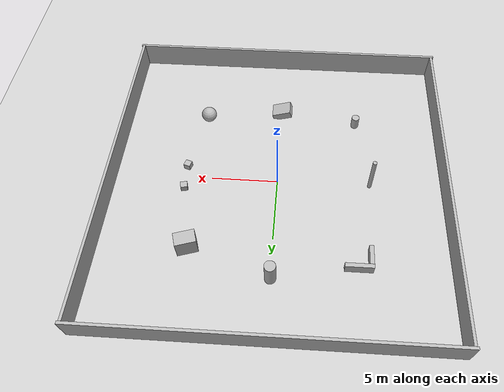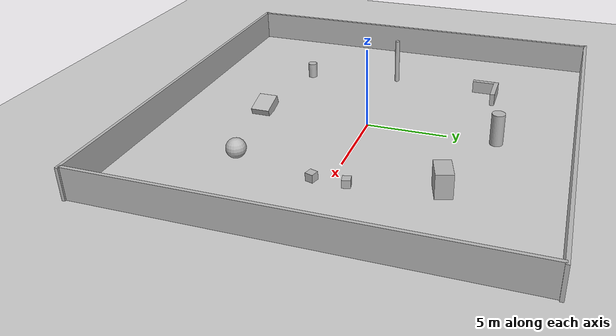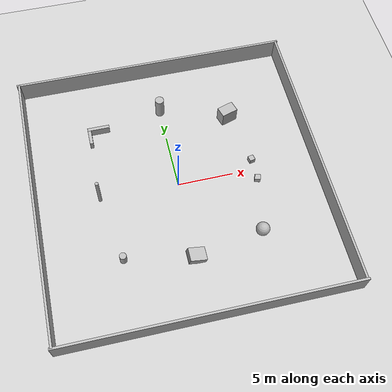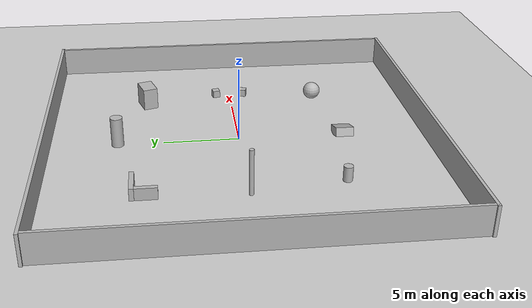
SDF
<?xml version="1.0" ?>
<sdf version='1.6'>
  <world name='gravel_large_loop'>

    <!-- Gazebo State Publisher Plugin -->
    <plugin name="gazebo_ros_state" filename="libgazebo_ros_state.so">
      <ros>
        <namespace></namespace>
        <remapping>model_states:=gazebo/model_states</remapping>
        <remapping>link_states:=gazebo/link_states</remapping>
      </ros>
      <update_rate>50.0</update_rate>
    </plugin>

    <include>
      <uri>model://sun</uri>
    </include>

    <include>
      <uri>model://ground_plane</uri>
    </include>

    <!-- Spherical coordinates — same as gravel_experiment.world -->
    <spherical_coordinates>
      <surface_model>EARTH_WGS84</surface_model>
      <latitude_deg>37.4275</latitude_deg>
      <longitude_deg>-122.1697</longitude_deg>
      <elevation>0.0</elevation>
      <heading_deg>0.0</heading_deg>
    </spherical_coordinates>

    <!-- 25 × 25 m walled arena (unchanged) -->

    <!-- North Wall -->
    <model name="wall_north">
      <static>true</static>
      <pose>0 12.5 1 0 0 0</pose>
      <link name="link">
        <collision name="collision">
          <geometry><box><size>25.4 0.2 2</size></box></geometry>
        </collision>
        <visual name="visual">
          <geometry><box><size>25.4 0.2 2</size></box></geometry>
        </visual>
      </link>
    </model>

    <!-- South Wall -->
    <model name="wall_south">
      <static>true</static>
      <pose>0 -12.5 1 0 0 0</pose>
      <link name="link">
        <collision name="collision">
          <geometry><box><size>25.4 0.2 2</size></box></geometry>
        </collision>
        <visual name="visual">
          <geometry><box><size>25.4 0.2 2</size></box></geometry>
        </visual>
      </link>
    </model>

    <!-- East Wall -->
    <model name="wall_east">
      <static>true</static>
      <pose>12.5 0 1 0 0 0</pose>
      <link name="link">
        <collision name="collision">
          <geometry><box><size>0.2 25.0 2</size></box></geometry>
        </collision>
        <visual name="visual">
          <geometry><box><size>0.2 25.0 2</size></box></geometry>
        </visual>
      </link>
    </model>

    <!-- West Wall -->
    <model name="wall_west">
      <static>true</static>
      <pose>-12.5 0 1 0 0 0</pose>
      <link name="link">
        <collision name="collision">
          <geometry><box><size>0.2 25.0 2</size></box></geometry>
        </collision>
        <visual name="visual">
          <geometry><box><size>0.2 25.0 2</size></box></geometry>
        </visual>
      </link>
    </model>

    <!-- Large box — northeast, ~8.5 m from origin -->
    <model name="large_box">
      <static>true</static>
      <pose>6 6 0.75 0 0 0.3</pose>
      <link name="link">
        <collision name="collision">
          <geometry><box><size>1.5 1 1.5</size></box></geometry>
        </collision>
        <visual name="visual">
          <geometry><box><size>1.5 1 1.5</size></box></geometry>
        </visual>
      </link>
    </model>

    <!-- Tall pillar — north, ~8 m from origin -->
    <model name="tall_pillar">
      <static>true</static>
      <pose>0 8 1 0 0 0</pose>
      <link name="link">
        <collision name="collision">
          <geometry>
            <cylinder><radius>0.4</radius><length>2.0</length></cylinder>
          </geometry>
        </collision>
        <visual name="visual">
          <geometry>
            <cylinder><radius>0.4</radius><length>2.0</length></cylinder>
          </geometry>
        </visual>
      </link>
    </model>

    <!-- Large sphere — southeast, ~8.5 m from origin -->
    <model name="large_sphere">
      <static>true</static>
      <pose>6 -6 0.6 0 0 0</pose>
      <link name="link">
        <collision name="collision">
          <geometry><sphere><radius>0.6</radius></sphere></geometry>
        </collision>
        <visual name="visual">
          <geometry><sphere><radius>0.6</radius></sphere></geometry>
        </visual>
      </link>
    </model>

    <!-- Thin column — west, ~7 m from origin -->
    <model name="thin_column">
      <static>true</static>
      <pose>-7 0 1.5 0 0 0</pose>
      <link name="link">
        <collision name="collision">
          <geometry>
            <cylinder><radius>0.15</radius><length>3.0</length></cylinder>
          </geometry>
        </collision>
        <visual name="visual">
          <geometry>
            <cylinder><radius>0.15</radius><length>3.0</length></cylinder>
          </geometry>
        </visual>
      </link>
    </model>

    <!-- Small box cluster — east, ~7 m from origin -->
    <model name="small_box_1">
      <static>true</static>
      <pose>7 1 0.25 0 0 0.2</pose>
      <link name="link">
        <collision name="collision">
          <geometry><box><size>0.5 0.5 0.5</size></box></geometry>
        </collision>
        <visual name="visual">
          <geometry><box><size>0.5 0.5 0.5</size></box></geometry>
        </visual>
      </link>
    </model>

    <model name="small_box_2">
      <static>true</static>
      <pose>7 -1 0.25 0 0 -0.3</pose>
      <link name="link">
        <collision name="collision">
          <geometry><box><size>0.5 0.5 0.5</size></box></geometry>
        </collision>
        <visual name="visual">
          <geometry><box><size>0.5 0.5 0.5</size></box></geometry>
        </visual>
      </link>
    </model>

    <!-- L-shaped obstacle — northwest, ~9 m from origin -->
    <model name="l_obstacle_1">
      <static>true</static>
      <pose>-6 7 0.4 0 0 0</pose>
      <link name="link">
        <collision name="collision">
          <geometry><box><size>2.0 0.3 0.8</size></box></geometry>
        </collision>
        <visual name="visual">
          <geometry><box><size>2.0 0.3 0.8</size></box></geometry>
        </visual>
      </link>
    </model>

    <model name="l_obstacle_2">
      <static>true</static>
      <pose>-6.85 6.15 0.4 0 0 0</pose>
      <link name="link">
        <collision name="collision">
          <geometry><box><size>0.3 1.4 0.8</size></box></geometry>
        </collision>
        <visual name="visual">
          <geometry><box><size>0.3 1.4 0.8</size></box></geometry>
        </visual>
      </link>
    </model>

    <!-- Angled ramp — south, ~7 m from origin -->
    <model name="angled_ramp">
      <static>true</static>
      <pose>0 -7 0.3 0 0.3 0</pose>
      <link name="link">
        <collision name="collision">
          <geometry><box><size>1.5 1.2 0.6</size></box></geometry>
        </collision>
        <visual name="visual">
          <geometry><box><size>1.5 1.2 0.6</size></box></geometry>
        </visual>
      </link>
    </model>

    <!-- Medium pillar — southwest, ~8.5 m from origin -->
    <model name="medium_pillar">
      <static>true</static>
      <pose>-6 -6 0.5 0 0 0</pose>
      <link name="link">
        <collision name="collision">
          <geometry>
            <cylinder><radius>0.3</radius><length>1.0</length></cylinder>
          </geometry>
        </collision>
        <visual name="visual">
          <geometry>
            <cylinder><radius>0.3</radius><length>1.0</length></cylinder>
          </geometry>
        </visual>
      </link>
    </model>

    <gui fullscreen='0'>
      <camera name='user_camera'>
        <pose frame=''>25.0 -30.0 15.0 0.0 0.45 2.4</pose>
        <view_controller>orbit</view_controller>
        <projection_type>perspective</projection_type>
      </camera>
    </gui>

  </world>
</sdf>
